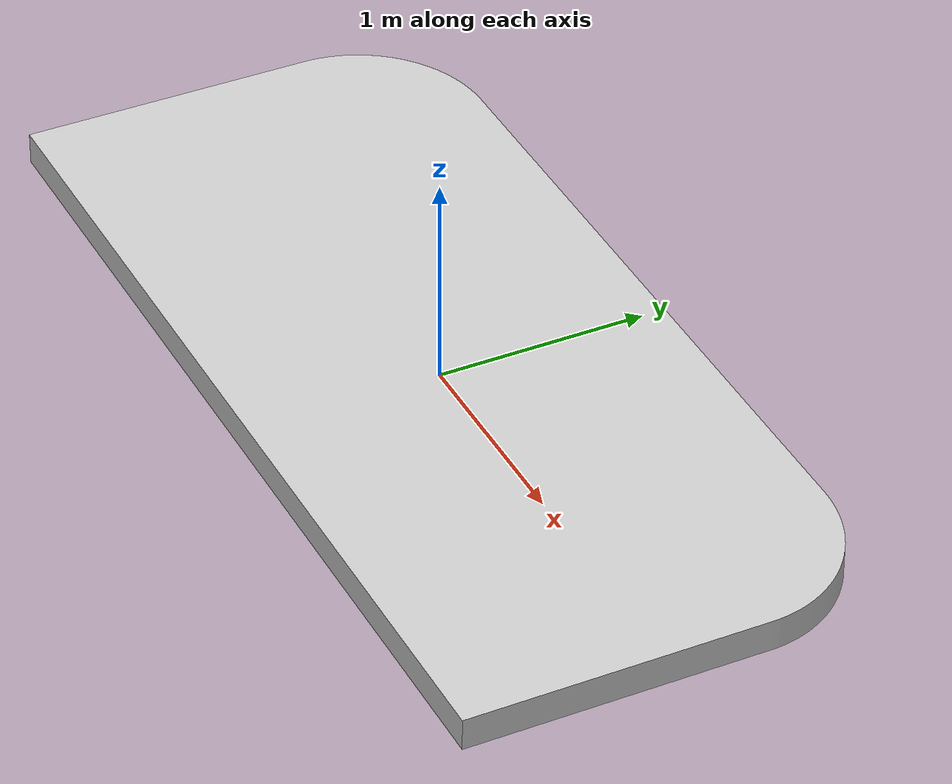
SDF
<?xml version="1.0" ?>
<sdf version="1.6">
  <model name="barboden">
    <static>true</static>
    <link name="link">
      <collision name="collision">
        <geometry>
          <mesh>
            <scale>1.1 1 1</scale>
            <uri>model://barboden/meshes/barboden.dae</uri>
          </mesh>
        </geometry>
      </collision>
      <visual name="visual">
        <geometry>
          <mesh>
            <scale>1.1 1 1</scale>
            <uri>model://barboden/meshes/barboden.dae</uri>
          </mesh>
        </geometry>
      </visual>
    </link>
  </model>
</sdf>
